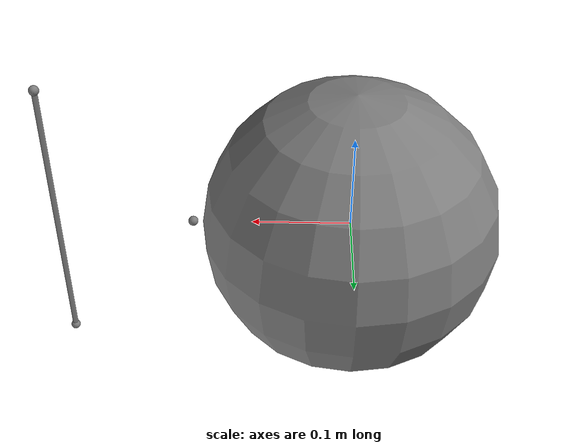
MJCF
<mujoco>
  <worldbody>
    <body name="b0">
      <geom name="wrap_s" type="sphere" size="0.15"/>
      <site name="s1" pos="0.3 0 0.15"/>
      <body name="b1">
        <joint name="sweep" type="slide" axis="1 0 0" range="-0.05 0.05"/>
        <geom type="sphere" size="0.01" mass="0.1"/>
        <site name="side_sweep" pos="0.16 0 0"/>
        <site name="s2" pos="0.3 0 -0.15"/>
      </body>
    </body>
  </worldbody>
  <tendon>
    <spatial name="t_sweep">
      <site site="s1"/>
      <geom geom="wrap_s" sidesite="side_sweep"/>
      <site site="s2"/>
    </spatial>
  </tendon>
</mujoco>
